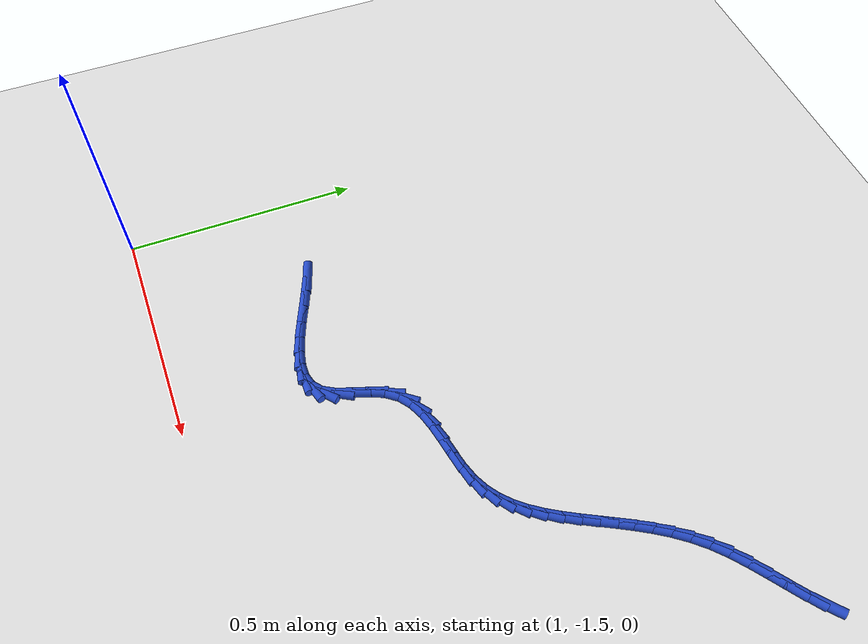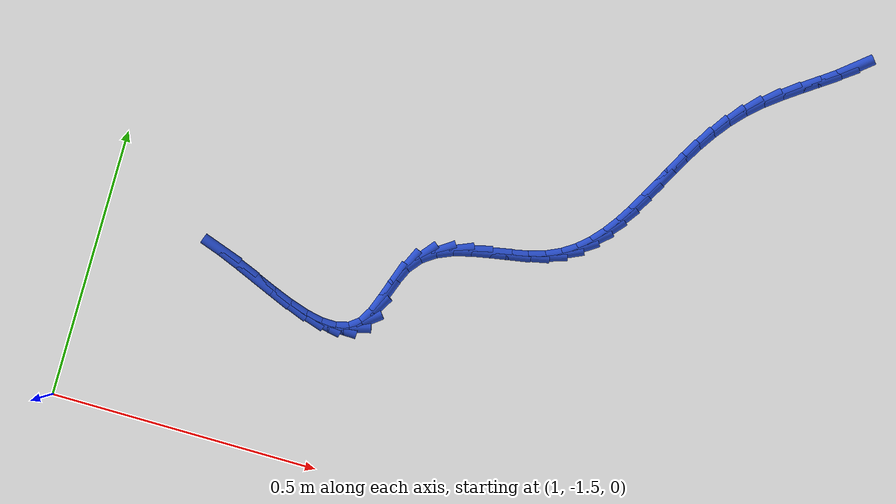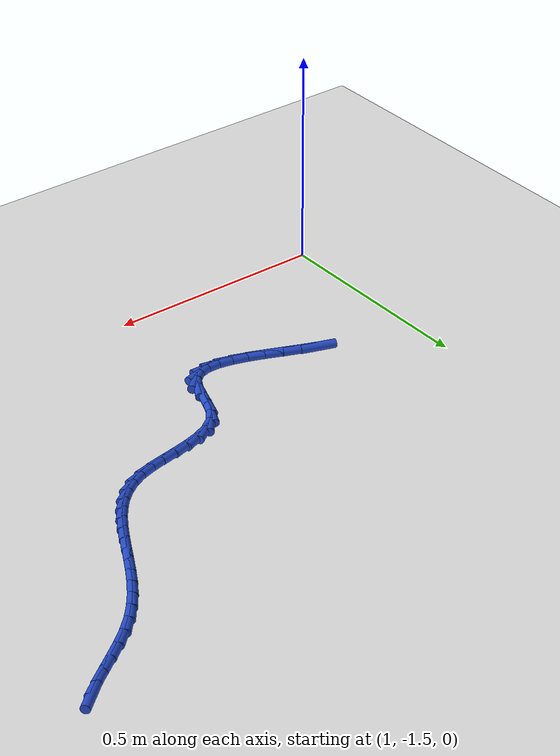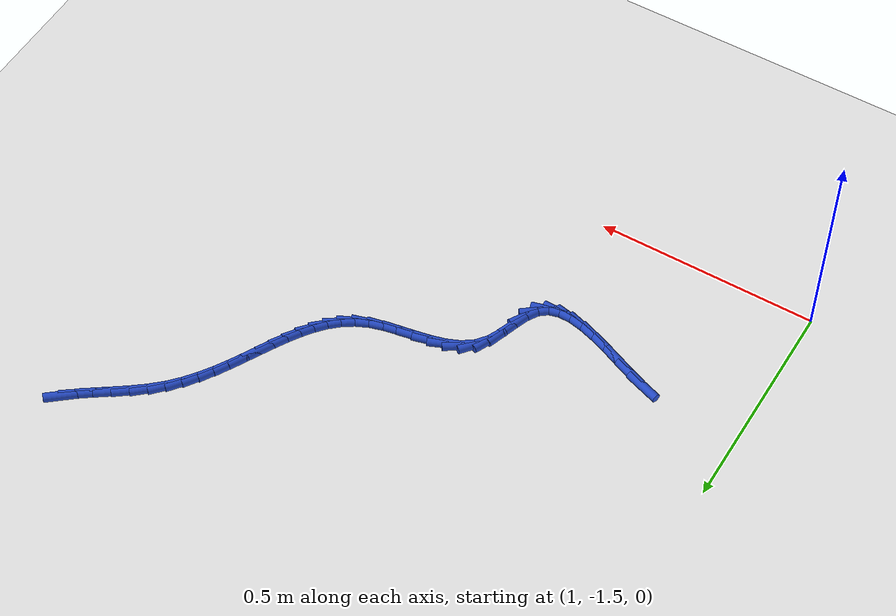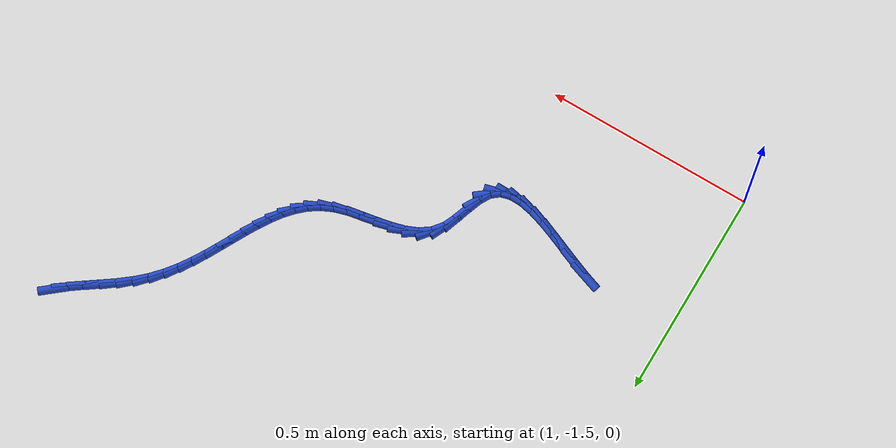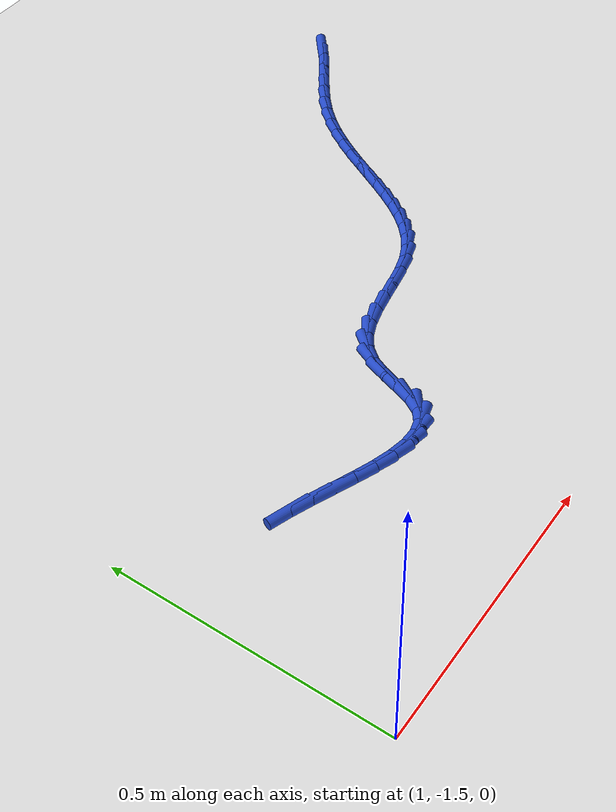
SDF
<sdf version="1.6">
 <world name="default">
  <model name="ground_plane">
   <static>1</static>
   <link name="link">
    <collision name="collision">
     <geometry><plane><normal>0 0 1</normal><size>100 100</size></plane></geometry>
     <surface><friction><ode><mu>100</mu><mu2>50</mu2></ode></friction></surface>
    </collision>
    <visual name="visual">
     <cast_shadows>0</cast_shadows>
     <geometry><plane><normal>0 0 1</normal><size>100 100</size></plane></geometry>
     <material>
      <script><uri>file://media/materials/scripts/gazebo.material</uri><name>Gazebo/WhiteGlow</name></script>
     </material>
    </visual>
   </link>
  </model>
  <model name="line">
   <link name="link_150">
    <pose>2.243625140007648 -0.5221246594466095 0.01 0 1.57 0.6898075296784988</pose>
    <collision name="collision">
     <geometry><cylinder><radius>0.01</radius><length>0.08</length></cylinder></geometry>
    </collision>
    <visual name="visual">
     <material>
      <script><name>Gazebo/Blue</name><uri>file://media/materials/scripts/gazebo.material</uri></script>
     </material>
     <geometry><cylinder><radius>0.01</radius><length>0.08</length></cylinder></geometry>
    </visual>
   </link>
   <link name="link_151">
    <pose>2.218973235253905 -0.5424627909761758 0.01 0 1.57 0.6298910854556048</pose>
    <collision name="collision">
     <geometry><cylinder><radius>0.01</radius><length>0.08</length></cylinder></geometry>
    </collision>
    <visual name="visual">
     <material>
      <script><name>Gazebo/Blue</name><uri>file://media/materials/scripts/gazebo.material</uri></script>
     </material>
     <geometry><cylinder><radius>0.01</radius><length>0.08</length></cylinder></geometry>
    </visual>
   </link>
   <link name="link_152">
    <pose>2.1910319418791873 -0.5628305388891959 0.01 0 1.57 0.608968360673921</pose>
    <collision name="collision">
     <geometry><cylinder><radius>0.01</radius><length>0.08</length></cylinder></geometry>
    </collision>
    <visual name="visual">
     <material>
      <script><name>Gazebo/Blue</name><uri>file://media/materials/scripts/gazebo.material</uri></script>
     </material>
     <geometry><cylinder><radius>0.01</radius><length>0.08</length></cylinder></geometry>
    </visual>
   </link>
   <link name="link_153">
    <pose>2.1611748574851393 -0.583652403351718 0.01 0 1.57 0.61995996971577</pose>
    <collision name="collision">
     <geometry><cylinder><radius>0.01</radius><length>0.08</length></cylinder></geometry>
    </collision>
    <visual name="visual">
     <material>
      <script><name>Gazebo/Blue</name><uri>file://media/materials/scripts/gazebo.material</uri></script>
     </material>
     <geometry><cylinder><radius>0.01</radius><length>0.08</length></cylinder></geometry>
    </visual>
   </link>
   <link name="link_154">
    <pose>2.130775579673408 -0.6053528845297904 0.01 0 1.57 0.6611772412204201</pose>
    <collision name="collision">
     <geometry><cylinder><radius>0.01</radius><length>0.08</length></cylinder></geometry>
    </collision>
    <visual name="visual">
     <material>
      <script><name>Gazebo/Blue</name><uri>file://media/materials/scripts/gazebo.material</uri></script>
     </material>
     <geometry><cylinder><radius>0.01</radius><length>0.08</length></cylinder></geometry>
    </visual>
   </link>
   <link name="link_155">
    <pose>2.1012077060456367 -0.6283564825894613 0.01 0 1.57 0.7348201141517745</pose>
    <collision name="collision">
     <geometry><cylinder><radius>0.01</radius><length>0.08</length></cylinder></geometry>
    </collision>
    <visual name="visual">
     <material>
      <script><name>Gazebo/Blue</name><uri>file://media/materials/scripts/gazebo.material</uri></script>
     </material>
     <geometry><cylinder><radius>0.01</radius><length>0.08</length></cylinder></geometry>
    </visual>
   </link>
   <link name="link_156">
    <pose>2.0738410550480793 -0.6530859637181399 0.01 0 1.57 0.8297344406063017</pose>
    <collision name="collision">
     <geometry><cylinder><radius>0.01</radius><length>0.08</length></cylinder></geometry>
    </collision>
    <visual name="visual">
     <material>
      <script><name>Gazebo/Blue</name><uri>file://media/materials/scripts/gazebo.material</uri></script>
     </material>
     <geometry><cylinder><radius>0.01</radius><length>0.08</length></cylinder></geometry>
    </visual>
   </link>
   <link name="link_157">
    <pose>2.049482765235166 -0.6797059213603631 0.01 0 1.57 0.9140464967575916</pose>
    <collision name="collision">
     <geometry><cylinder><radius>0.01</radius><length>0.08</length></cylinder></geometry>
    </collision>
    <visual name="visual">
     <material>
      <script><name>Gazebo/Blue</name><uri>file://media/materials/scripts/gazebo.material</uri></script>
     </material>
     <geometry><cylinder><radius>0.01</radius><length>0.08</length></cylinder></geometry>
    </visual>
   </link>
   <link name="link_158">
    <pose>2.0277853157831256 -0.707851160029014 0.01 0 1.57 0.9820288573909219</pose>
    <collision name="collision">
     <geometry><cylinder><radius>0.01</radius><length>0.08</length></cylinder></geometry>
    </collision>
    <visual name="visual">
     <material>
      <script><name>Gazebo/Blue</name><uri>file://media/materials/scripts/gazebo.material</uri></script>
     </material>
     <geometry><cylinder><radius>0.01</radius><length>0.08</length></cylinder></geometry>
    </visual>
   </link>
   <link name="link_159">
    <pose>2.0082594626034886 -0.737091457772538 0.01 0 1.57 1.032828850544051</pose>
    <collision name="collision">
     <geometry><cylinder><radius>0.01</radius><length>0.08</length></cylinder></geometry>
    </collision>
    <visual name="visual">
     <material>
      <script><name>Gazebo/Blue</name><uri>file://media/materials/scripts/gazebo.material</uri></script>
     </material>
     <geometry><cylinder><radius>0.01</radius><length>0.08</length></cylinder></geometry>
    </visual>
   </link>
   <link name="link_160">
    <pose>1.9904159616077857 -0.7669965926393795 0.01 0 1.57 1.0660819953997682</pose>
    <collision name="collision">
     <geometry><cylinder><radius>0.01</radius><length>0.08</length></cylinder></geometry>
    </collision>
    <visual name="visual">
     <material>
      <script><name>Gazebo/Blue</name><uri>file://media/materials/scripts/gazebo.material</uri></script>
     </material>
     <geometry><cylinder><radius>0.01</radius><length>0.08</length></cylinder></geometry>
    </visual>
   </link>
   <link name="link_161">
    <pose>1.9737655687075468 -0.7971363426779832 0.01 0 1.57 1.0814549038741854</pose>
    <collision name="collision">
     <geometry><cylinder><radius>0.01</radius><length>0.08</length></cylinder></geometry>
    </collision>
    <visual name="visual">
     <material>
      <script><name>Gazebo/Blue</name><uri>file://media/materials/scripts/gazebo.material</uri></script>
     </material>
     <geometry><cylinder><radius>0.01</radius><length>0.08</length></cylinder></geometry>
    </visual>
   </link>
   <link name="link_162">
    <pose>1.9578190398143034 -0.8270804859367946 0.01 0 1.57 1.0783071062517708</pose>
    <collision name="collision">
     <geometry><cylinder><radius>0.01</radius><length>0.08</length></cylinder></geometry>
    </collision>
    <visual name="visual">
     <material>
      <script><name>Gazebo/Blue</name><uri>file://media/materials/scripts/gazebo.material</uri></script>
     </material>
     <geometry><cylinder><radius>0.01</radius><length>0.08</length></cylinder></geometry>
    </visual>
   </link>
   <link name="link_163">
    <pose>1.9420871308395862 -0.8563988004642579 0.01 0 1.57 1.055481690710626</pose>
    <collision name="collision">
     <geometry><cylinder><radius>0.01</radius><length>0.08</length></cylinder></geometry>
    </collision>
    <visual name="visual">
     <material>
      <script><name>Gazebo/Blue</name><uri>file://media/materials/scripts/gazebo.material</uri></script>
     </material>
     <geometry><cylinder><radius>0.01</radius><length>0.08</length></cylinder></geometry>
    </visual>
   </link>
   <link name="link_164">
    <pose>1.9260805976949256 -0.8846610643088184 0.01 0 1.57 1.0112466821586836</pose>
    <collision name="collision">
     <geometry><cylinder><radius>0.01</radius><length>0.08</length></cylinder></geometry>
    </collision>
    <visual name="visual">
     <material>
      <script><name>Gazebo/Blue</name><uri>file://media/materials/scripts/gazebo.material</uri></script>
     </material>
     <geometry><cylinder><radius>0.01</radius><length>0.08</length></cylinder></geometry>
    </visual>
   </link>
   <link name="link_165">
    <pose>1.9093101962918517 -0.9114370555189206 0.01 0 1.57 0.9434781494941316</pose>
    <collision name="collision">
     <geometry><cylinder><radius>0.01</radius><length>0.08</length></cylinder></geometry>
    </collision>
    <visual name="visual">
     <material>
      <script><name>Gazebo/Blue</name><uri>file://media/materials/scripts/gazebo.material</uri></script>
     </material>
     <geometry><cylinder><radius>0.01</radius><length>0.08</length></cylinder></geometry>
    </visual>
   </link>
   <link name="link_166">
    <pose>1.8912866825418961 -0.9362965521430097 0.01 0 1.57 0.8502785335956705</pose>
    <collision name="collision">
     <geometry><cylinder><radius>0.01</radius><length>0.08</length></cylinder></geometry>
    </collision>
    <visual name="visual">
     <material>
      <script><name>Gazebo/Blue</name><uri>file://media/materials/scripts/gazebo.material</uri></script>
     </material>
     <geometry><cylinder><radius>0.01</radius><length>0.08</length></cylinder></geometry>
    </visual>
   </link>
   <link name="link_167">
    <pose>1.8715208123565887 -0.95880933222953 0.01 0 1.57 0.7312587030449805</pose>
    <collision name="collision">
     <geometry><cylinder><radius>0.01</radius><length>0.08</length></cylinder></geometry>
    </collision>
    <visual name="visual">
     <material>
      <script><name>Gazebo/Blue</name><uri>file://media/materials/scripts/gazebo.material</uri></script>
     </material>
     <geometry><cylinder><radius>0.01</radius><length>0.08</length></cylinder></geometry>
    </visual>
   </link>
   <link name="link_168">
    <pose>1.8495233416474606 -0.9785451738269271 0.01 0 1.57 0.5893962190101109</pose>
    <collision name="collision">
     <geometry><cylinder><radius>0.01</radius><length>0.08</length></cylinder></geometry>
    </collision>
    <visual name="visual">
     <material>
      <script><name>Gazebo/Blue</name><uri>file://media/materials/scripts/gazebo.material</uri></script>
     </material>
     <geometry><cylinder><radius>0.01</radius><length>0.08</length></cylinder></geometry>
    </visual>
   </link>
   <link name="link_169">
    <pose>1.8248050263260425 -0.9950738549836454 0.01 0 1.57 0.432455454034699</pose>
    <collision name="collision">
     <geometry><cylinder><radius>0.01</radius><length>0.08</length></cylinder></geometry>
    </collision>
    <visual name="visual">
     <material>
      <script><name>Gazebo/Blue</name><uri>file://media/materials/scripts/gazebo.material</uri></script>
     </material>
     <geometry><cylinder><radius>0.01</radius><length>0.08</length></cylinder></geometry>
    </visual>
   </link>
   <link name="link_170">
    <pose>1.7968768488248734 -1.0079653983178671 0.01 0 1.57 0.2876931223040453</pose>
    <collision name="collision">
     <geometry><cylinder><radius>0.01</radius><length>0.08</length></cylinder></geometry>
    </collision>
    <visual name="visual">
     <material>
      <script><name>Gazebo/Blue</name><uri>file://media/materials/scripts/gazebo.material</uri></script>
     </material>
     <geometry><cylinder><radius>0.01</radius><length>0.08</length></cylinder></geometry>
    </visual>
   </link>
   <link name="link_171">
    <pose>1.765638055278202 -1.0172090262039035 0.01 0 1.57 0.20228252036809347</pose>
    <collision name="collision">
     <geometry><cylinder><radius>0.01</radius><length>0.08</length></cylinder></geometry>
    </collision>
    <visual name="visual">
     <material>
      <script><name>Gazebo/Blue</name><uri>file://media/materials/scripts/gazebo.material</uri></script>
     </material>
     <geometry><cylinder><radius>0.01</radius><length>0.08</length></cylinder></geometry>
    </visual>
   </link>
   <link name="link_172">
    <pose>1.732172060478996 -1.0240724818017164 0.01 0 1.57 0.17258411009696106</pose>
    <collision name="collision">
     <geometry><cylinder><radius>0.01</radius><length>0.08</length></cylinder></geometry>
    </collision>
    <visual name="visual">
     <material>
      <script><name>Gazebo/Blue</name><uri>file://media/materials/scripts/gazebo.material</uri></script>
     </material>
     <geometry><cylinder><radius>0.01</radius><length>0.08</length></cylinder></geometry>
    </visual>
   </link>
   <link name="link_173">
    <pose>1.6977872324189485 -1.030066385278908 0.01 0 1.57 0.1927501653315588</pose>
    <collision name="collision">
     <geometry><cylinder><radius>0.01</radius><length>0.08</length></cylinder></geometry>
    </collision>
    <visual name="visual">
     <material>
      <script><name>Gazebo/Blue</name><uri>file://media/materials/scripts/gazebo.material</uri></script>
     </material>
     <geometry><cylinder><radius>0.01</radius><length>0.08</length></cylinder></geometry>
    </visual>
   </link>
   <link name="link_174">
    <pose>1.6637919390897518 -1.0367013568030794 0.01 0 1.57 0.2656260138189973</pose>
    <collision name="collision">
     <geometry><cylinder><radius>0.01</radius><length>0.08</length></cylinder></geometry>
    </collision>
    <visual name="visual">
     <material>
      <script><name>Gazebo/Blue</name><uri>file://media/materials/scripts/gazebo.material</uri></script>
     </material>
     <geometry><cylinder><radius>0.01</radius><length>0.08</length></cylinder></geometry>
    </visual>
   </link>
   <link name="link_175">
    <pose>1.6314945484830985 -1.0454880165418314 0.01 0 1.57 0.40187765013367993</pose>
    <collision name="collision">
     <geometry><cylinder><radius>0.01</radius><length>0.08</length></cylinder></geometry>
    </collision>
    <visual name="visual">
     <material>
      <script><name>Gazebo/Blue</name><uri>file://media/materials/scripts/gazebo.material</uri></script>
     </material>
     <geometry><cylinder><radius>0.01</radius><length>0.08</length></cylinder></geometry>
    </visual>
   </link>
   <link name="link_176">
    <pose>1.6022034285906817 -1.0579369846627649 0.01 0 1.57 0.6144341525000837</pose>
    <collision name="collision">
     <geometry><cylinder><radius>0.01</radius><length>0.08</length></cylinder></geometry>
    </collision>
    <visual name="visual">
     <material>
      <script><name>Gazebo/Blue</name><uri>file://media/materials/scripts/gazebo.material</uri></script>
     </material>
     <geometry><cylinder><radius>0.01</radius><length>0.08</length></cylinder></geometry>
    </visual>
   </link>
   <link name="link_177">
    <pose>1.5772269474041927 -1.0755588813334824 0.01 0 1.57 0.8973534668768428</pose>
    <collision name="collision">
     <geometry><cylinder><radius>0.01</radius><length>0.08</length></cylinder></geometry>
    </collision>
    <visual name="visual">
     <material>
      <script><name>Gazebo/Blue</name><uri>file://media/materials/scripts/gazebo.material</uri></script>
     </material>
     <geometry><cylinder><radius>0.01</radius><length>0.08</length></cylinder></geometry>
    </visual>
   </link>
   <link name="link_178">
    <pose>1.5578547741203368 -1.0998386410580134 0.01 0 1.57 1.1411177594428452</pose>
    <collision name="collision">
     <geometry><cylinder><radius>0.01</radius><length>0.08</length></cylinder></geometry>
    </collision>
    <visual name="visual">
     <material>
      <script><name>Gazebo/Blue</name><uri>file://media/materials/scripts/gazebo.material</uri></script>
     </material>
     <geometry><cylinder><radius>0.01</radius><length>0.08</length></cylinder></geometry>
    </visual>
   </link>
   <link name="link_179">
    <pose>1.5439166648005798 -1.130255783678203 0.01 0 1.57 1.2412973642288054</pose>
    <collision name="collision">
     <geometry><cylinder><radius>0.01</radius><length>0.08</length></cylinder></geometry>
    </collision>
    <visual name="visual">
     <material>
      <script><name>Gazebo/Blue</name><uri>file://media/materials/scripts/gazebo.material</uri></script>
     </material>
     <geometry><cylinder><radius>0.01</radius><length>0.08</length></cylinder></geometry>
    </visual>
   </link>
   <link name="link_180">
    <pose>1.5327602397311215 -1.1628802347544944 0.01 0 1.57 1.217638325457761</pose>
    <collision name="collision">
     <geometry><cylinder><radius>0.01</radius><length>0.08</length></cylinder></geometry>
    </collision>
    <visual name="visual">
     <material>
      <script><name>Gazebo/Blue</name><uri>file://media/materials/scripts/gazebo.material</uri></script>
     </material>
     <geometry><cylinder><radius>0.01</radius><length>0.08</length></cylinder></geometry>
    </visual>
   </link>
   <link name="link_181">
    <pose>1.5214917442688995 -1.1934503543517239 0.01 0 1.57 1.0389435619569785</pose>
    <collision name="collision">
     <geometry><cylinder><radius>0.01</radius><length>0.08</length></cylinder></geometry>
    </collision>
    <visual name="visual">
     <material>
      <script><name>Gazebo/Blue</name><uri>file://media/materials/scripts/gazebo.material</uri></script>
     </material>
     <geometry><cylinder><radius>0.01</radius><length>0.08</length></cylinder></geometry>
    </visual>
   </link>
   <link name="link_182">
    <pose>1.507218975110159 -1.2177069180569604 0.01 0 1.57 0.6625232972885854</pose>
    <collision name="collision">
     <geometry><cylinder><radius>0.01</radius><length>0.08</length></cylinder></geometry>
    </collision>
    <visual name="visual">
     <material>
      <script><name>Gazebo/Blue</name><uri>file://media/materials/scripts/gazebo.material</uri></script>
     </material>
     <geometry><cylinder><radius>0.01</radius><length>0.08</length></cylinder></geometry>
    </visual>
   </link>
   <link name="link_183">
    <pose>1.4879274309296162 -1.2327573326191696 0.01 0 1.57 0.2684199717110608</pose>
    <collision name="collision">
     <geometry><cylinder><radius>0.01</radius><length>0.08</length></cylinder></geometry>
    </collision>
    <visual name="visual">
     <material>
      <script><name>Gazebo/Blue</name><uri>file://media/materials/scripts/gazebo.material</uri></script>
     </material>
     <geometry><cylinder><radius>0.01</radius><length>0.08</length></cylinder></geometry>
    </visual>
   </link>
   <link name="link_184">
    <pose>1.4639437180485342 -1.2393542405753315 0.01 0 1.57 -0.01797768852580014</pose>
    <collision name="collision">
     <geometry><cylinder><radius>0.01</radius><length>0.08</length></cylinder></geometry>
    </collision>
    <visual name="visual">
     <material>
      <script><name>Gazebo/Blue</name><uri>file://media/materials/scripts/gazebo.material</uri></script>
     </material>
     <geometry><cylinder><radius>0.01</radius><length>0.08</length></cylinder></geometry>
    </visual>
   </link>
   <link name="link_185">
    <pose>1.435980548868132 -1.2388514732641016 0.01 0 1.57 -0.19747649130841616</pose>
    <collision name="collision">
     <geometry><cylinder><radius>0.01</radius><length>0.08</length></cylinder></geometry>
    </collision>
    <visual name="visual">
     <material>
      <script><name>Gazebo/Blue</name><uri>file://media/materials/scripts/gazebo.material</uri></script>
     </material>
     <geometry><cylinder><radius>0.01</radius><length>0.08</length></cylinder></geometry>
    </visual>
   </link>
   <link name="link_186">
    <pose>1.404750635789628 -1.2326028620241354 0.01 0 1.57 -0.3051253140494773</pose>
    <collision name="collision">
     <geometry><cylinder><radius>0.01</radius><length>0.08</length></cylinder></geometry>
    </collision>
    <visual name="visual">
     <material>
      <script><name>Gazebo/Blue</name><uri>file://media/materials/scripts/gazebo.material</uri></script>
     </material>
     <geometry><cylinder><radius>0.01</radius><length>0.08</length></cylinder></geometry>
    </visual>
   </link>
   <link name="link_187">
    <pose>1.3709666912142406 -1.2219622381940878 0.01 0 1.57 -0.36660593257174623</pose>
    <collision name="collision">
     <geometry><cylinder><radius>0.01</radius><length>0.08</length></cylinder></geometry>
    </collision>
    <visual name="visual">
     <material>
      <script><name>Gazebo/Blue</name><uri>file://media/materials/scripts/gazebo.material</uri></script>
     </material>
     <geometry><cylinder><radius>0.01</radius><length>0.08</length></cylinder></geometry>
    </visual>
   </link>
   <link name="link_188">
    <pose>1.3353414275431887 -1.2082834331126149 0.01 0 1.57 -0.3959275375114615</pose>
    <collision name="collision">
     <geometry><cylinder><radius>0.01</radius><length>0.08</length></cylinder></geometry>
    </collision>
    <visual name="visual">
     <material>
      <script><name>Gazebo/Blue</name><uri>file://media/materials/scripts/gazebo.material</uri></script>
     </material>
     <geometry><cylinder><radius>0.01</radius><length>0.08</length></cylinder></geometry>
    </visual>
   </link>
   <link name="link_189">
    <pose>1.2985875571776913 -1.192920278118372 0.01 0 1.57 -0.39951030938393456</pose>
    <collision name="collision">
     <geometry><cylinder><radius>0.01</radius><length>0.08</length></cylinder></geometry>
    </collision>
    <visual name="visual">
     <material>
      <script><name>Gazebo/Blue</name><uri>file://media/materials/scripts/gazebo.material</uri></script>
     </material>
     <geometry><cylinder><radius>0.01</radius><length>0.08</length></cylinder></geometry>
    </visual>
   </link>
   <link name="link_190">
    <pose>1.261417792518966 -1.1772266045500146 0.01 0 1.57 -0.378662303282591</pose>
    <collision name="collision">
     <geometry><cylinder><radius>0.01</radius><length>0.08</length></cylinder></geometry>
    </collision>
    <visual name="visual">
     <material>
      <script><name>Gazebo/Blue</name><uri>file://media/materials/scripts/gazebo.material</uri></script>
     </material>
     <geometry><cylinder><radius>0.01</radius><length>0.08</length></cylinder></geometry>
    </visual>
   </link>
   <link name="link_191">
    <pose>1.224544845968232 -1.1625562437461974 0.01 0 1.57 -0.330228646932865</pose>
    <collision name="collision">
     <geometry><cylinder><radius>0.01</radius><length>0.08</length></cylinder></geometry>
    </collision>
    <visual name="visual">
     <material>
      <script><name>Gazebo/Blue</name><uri>file://media/materials/scripts/gazebo.material</uri></script>
     </material>
     <geometry><cylinder><radius>0.01</radius><length>0.08</length></cylinder></geometry>
    </visual>
   </link>
  </model>
 </world>
</sdf>
